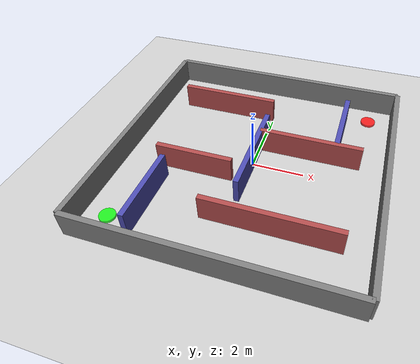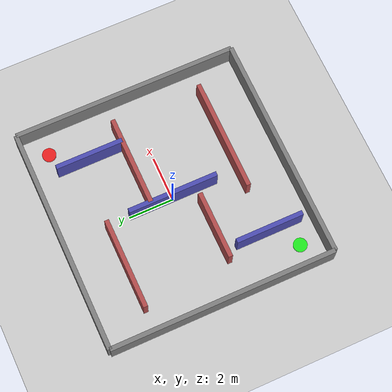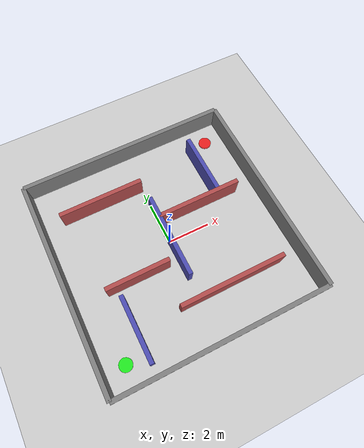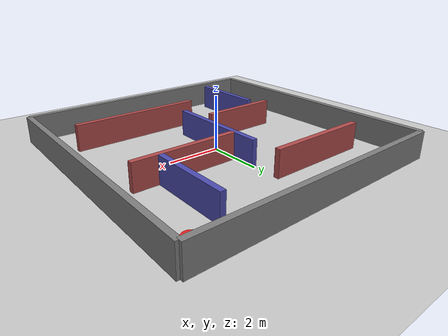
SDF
<sdf version="1.6">
<world name="turtlebot3_maze">
<!-- 基础设置 -->
<include>
  <uri>model://ground_plane</uri>
</include>

<include>
  <uri>model://sun</uri>
</include>

<!-- 物理引擎设置 -->
<physics type="ode">
  <real_time_update_rate>1000.0</real_time_update_rate>
  <max_step_size>0.001</max_step_size>
  <real_time_factor>1</real_time_factor>
</physics>

<!-- 场景设置 -->
<scene>
  <ambient>0.4 0.4 0.4 1</ambient>
  <background>0.7 0.7 0.7 1</background>
  <shadows>true</shadows>
</scene>

<!-- 迷宫外墙 -->
<model name="wall_north">
  <static>true</static>
  <link name="link">
    <pose>0 5 0.5 0 0 0</pose>
    <collision name="collision">
      <geometry>
        <box>
          <size>10 0.2 1</size>
        </box>
      </geometry>
    </collision>
    <visual name="visual">
      <geometry>
        <box>
          <size>10 0.2 1</size>
        </box>
      </geometry>
      <material>
        <ambient>0.5 0.5 0.5 1</ambient>
        <diffuse>0.5 0.5 0.5 1</diffuse>
      </material>
    </visual>
  </link>
</model>

<model name="wall_south">
  <static>true</static>
  <link name="link">
    <pose>0 -5 0.5 0 0 0</pose>
    <collision name="collision">
      <geometry>
        <box>
          <size>10 0.2 1</size>
        </box>
      </geometry>
    </collision>
    <visual name="visual">
      <geometry>
        <box>
          <size>10 0.2 1</size>
        </box>
      </geometry>
      <material>
        <ambient>0.5 0.5 0.5 1</ambient>
        <diffuse>0.5 0.5 0.5 1</diffuse>
      </material>
    </visual>
  </link>
</model>

<model name="wall_east">
  <static>true</static>
  <link name="link">
    <pose>5 0 0.5 0 0 0</pose>
    <collision name="collision">
      <geometry>
        <box>
          <size>0.2 10 1</size>
        </box>
      </geometry>
    </collision>
    <visual name="visual">
      <geometry>
        <box>
          <size>0.2 10 1</size>
        </box>
      </geometry>
      <material>
        <ambient>0.5 0.5 0.5 1</ambient>
        <diffuse>0.5 0.5 0.5 1</diffuse>
      </material>
    </visual>
  </link>
</model>

<model name="wall_west">
  <static>true</static>
  <link name="link">
    <pose>-5 0 0.5 0 0 0</pose>
    <collision name="collision">
      <geometry>
        <box>
          <size>0.2 10 1</size>
        </box>
      </geometry>
    </collision>
    <visual name="visual">
      <geometry>
        <box>
          <size>0.2 10 1</size>
        </box>
      </geometry>
      <material>
        <ambient>0.5 0.5 0.5 1</ambient>
        <diffuse>0.5 0.5 0.5 1</diffuse>
      </material>
    </visual>
  </link>
</model>

<!-- 内部迷宫墙壁（保持不变）-->
<model name="wall_h1">
  <static>true</static>
  <link name="link">
    <pose>-2 3 0.5 0 0 0</pose>
    <collision name="collision">
      <geometry>
        <box>
          <size>4 0.2 1</size>
        </box>
      </geometry>
    </collision>
    <visual name="visual">
      <geometry>
        <box>
          <size>4 0.2 1</size>
        </box>
      </geometry>
      <material>
        <ambient>0.7 0.3 0.3 1</ambient>
        <diffuse>0.7 0.3 0.3 1</diffuse>
      </material>
    </visual>
  </link>
</model>

<model name="wall_h2">
  <static>true</static>
  <link name="link">
    <pose>2 1 0.5 0 0 0</pose>
    <collision name="collision">
      <geometry>
        <box>
          <size>4 0.2 1</size>
        </box>
      </geometry>
    </collision>
    <visual name="visual">
      <geometry>
        <box>
          <size>4 0.2 1</size>
        </box>
      </geometry>
      <material>
        <ambient>0.7 0.3 0.3 1</ambient>
        <diffuse>0.7 0.3 0.3 1</diffuse>
      </material>
    </visual>
  </link>
</model>

<model name="wall_h3">
  <static>true</static>
  <link name="link">
    <pose>-2 -1 0.5 0 0 0</pose>
    <collision name="collision">
      <geometry>
        <box>
          <size>3 0.2 1</size>
        </box>
      </geometry>
    </collision>
    <visual name="visual">
      <geometry>
        <box>
          <size>3 0.2 1</size>
        </box>
      </geometry>
      <material>
        <ambient>0.7 0.3 0.3 1</ambient>
        <diffuse>0.7 0.3 0.3 1</diffuse>
      </material>
    </visual>
  </link>
</model>

<model name="wall_h4">
  <static>true</static>
  <link name="link">
    <pose>1.5 -3 0.5 0 0 0</pose>
    <collision name="collision">
      <geometry>
        <box>
          <size>5 0.2 1</size>
        </box>
      </geometry>
    </collision>
    <visual name="visual">
      <geometry>
        <box>
          <size>5 0.2 1</size>
        </box>
      </geometry>
      <material>
        <ambient>0.7 0.3 0.3 1</ambient>
        <diffuse>0.7 0.3 0.3 1</diffuse>
      </material>
    </visual>
  </link>
</model>

<model name="wall_v1">
  <static>true</static>
  <link name="link">
    <pose>-3 -3 0.5 0 0 0</pose>
    <collision name="collision">
      <geometry>
        <box>
          <size>0.2 3 1</size>
        </box>
      </geometry>
    </collision>
    <visual name="visual">
      <geometry>
        <box>
          <size>0.2 3 1</size>
        </box>
      </geometry>
      <material>
        <ambient>0.3 0.3 0.7 1</ambient>
        <diffuse>0.3 0.3 0.7 1</diffuse>
      </material>
    </visual>
  </link>
</model>

<model name="wall_v2">
  <static>true</static>
  <link name="link">
    <pose>0 0 0.5 0 0 0</pose>
    <collision name="collision">
      <geometry>
        <box>
          <size>0.2 4 1</size>
        </box>
      </geometry>
    </collision>
    <visual name="visual">
      <geometry>
        <box>
          <size>0.2 4 1</size>
        </box>
      </geometry>
      <material>
        <ambient>0.3 0.3 0.7 1</ambient>
        <diffuse>0.3 0.3 0.7 1</diffuse>
      </material>
    </visual>
  </link>
</model>

<model name="wall_v3">
  <static>true</static>
  <link name="link">
    <pose>3 2.5 0.5 0 0 0</pose>
    <collision name="collision">
      <geometry>
        <box>
          <size>0.2 3 1</size>
        </box>
      </geometry>
    </collision>
    <visual name="visual">
      <geometry>
        <box>
          <size>0.2 3 1</size>
        </box>
      </geometry>
      <material>
        <ambient>0.3 0.3 0.7 1</ambient>
        <diffuse>0.3 0.3 0.7 1</diffuse>
      </material>
    </visual>
  </link>
</model>

<!-- 起点标记 -->
<model name="start_marker">
  <static>true</static>
  <link name="link">
    <pose>-4 -4 0.05 0 0 0</pose>
    <visual name="visual">
      <geometry>
        <cylinder>
          <radius>0.3</radius>
          <length>0.1</length>
        </cylinder>
      </geometry>
      <material>
        <ambient>0 1 0 0.8</ambient>
        <diffuse>0 1 0 0.8</diffuse>
      </material>
    </visual>
  </link>
</model>

<!-- 终点标记 -->
<model name="goal_marker">
  <static>true</static>
  <link name="link">
    <pose>4 4 0.05 0 0 0</pose>
    <visual name="visual">
      <geometry>
        <cylinder>
          <radius>0.3</radius>
          <length>0.1</length>
        </cylinder>
      </geometry>
      <material>
        <ambient>1 0 0 0.8</ambient>
        <diffuse>1 0 0 0.8</diffuse>
      </material>
    </visual>
  </link>
</model>

<!-- TurtleBot3 机器人 - 修正后的包含方式 -->

</world>
</sdf>
